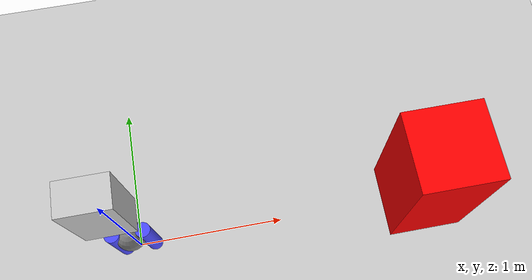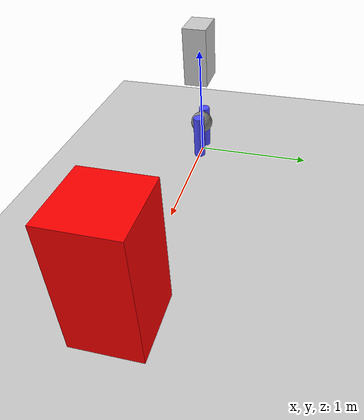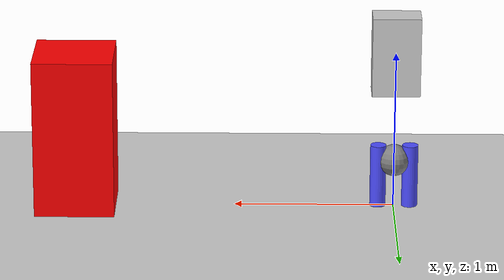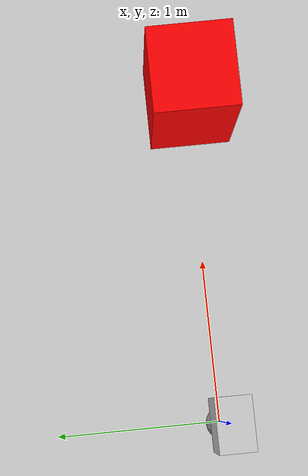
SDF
<?xml version="1.0" ?>
<sdf version="1.7">
  <world name="humanoid_simulation">
    <!-- Include the default ground plane -->
    <include>
      <uri>model://ground_plane</uri>
    </include>

    <!-- Include the default sun -->
    <include>
      <uri>model://sun</uri>
    </include>

    <!-- Physics engine configuration -->
    <physics type="ode">
      <max_step_size>0.001</max_step_size>
      <real_time_factor>1.0</real_time_factor>
      <real_time_update_rate>1000.0</real_time_update_rate>
      <gravity>0 0 -9.8</gravity>
    </physics>

    <!-- Simple humanoid robot model -->
    <model name="simple_humanoid">
      <!-- Main body -->
      <link name="torso">
        <pose>0 0 1.0 0 0 0</pose>
        <collision name="torso_collision">
          <geometry>
            <box>
              <size>0.3 0.2 0.5</size>
            </box>
          </geometry>
        </collision>
        <visual name="torso_visual">
          <geometry>
            <box>
              <size>0.3 0.2 0.5</size>
            </box>
          </geometry>
          <material>
            <ambient>0.8 0.8 0.8 1</ambient>
            <diffuse>0.8 0.8 0.8 1</diffuse>
          </material>
        </visual>
        <inertial>
          <mass>10.0</mass>
          <inertia>
            <ixx>0.5</ixx>
            <ixy>0.0</ixy>
            <ixz>0.0</ixz>
            <iyy>0.6</iyy>
            <iyz>0.0</iyz>
            <izz>0.3</izz>
          </inertia>
        </inertial>
      </link>

      <!-- Head -->
      <link name="head">
        <pose>0 0 0.3 0 0 0</pose>
        <collision name="head_collision">
          <geometry>
            <sphere>
              <radius>0.1</radius>
            </sphere>
          </geometry>
        </collision>
        <visual name="head_visual">
          <geometry>
            <sphere>
              <radius>0.1</radius>
            </sphere>
          </geometry>
          <material>
            <ambient>0.5 0.5 0.5 1</ambient>
            <diffuse>0.5 0.5 0.5 1</diffuse>
          </material>
        </visual>
        <inertial>
          <mass>2.0</mass>
          <inertia>
            <ixx>0.02</ixx>
            <ixy>0.0</ixy>
            <ixz>0.0</ixz>
            <iyy>0.02</iyy>
            <iyz>0.0</iyz>
            <izz>0.02</izz>
          </inertia>
        </inertial>
      </link>

      <!-- Connect torso and head -->
      <joint name="neck_joint" type="revolute">
        <parent>torso</parent>
        <child>head</child>
        <axis>
          <xyz>0 0 1</xyz>
          <limit>
            <lower>-1.57</lower>
            <upper>1.57</upper>
          </limit>
        </axis>
      </joint>

      <!-- Left leg -->
      <link name="left_thigh">
        <pose>-0.1 0 0.2 0 0 0</pose>
        <collision name="left_thigh_collision">
          <geometry>
            <cylinder>
              <radius>0.05</radius>
              <length>0.4</length>
            </cylinder>
          </geometry>
        </collision>
        <visual name="left_thigh_visual">
          <geometry>
            <cylinder>
              <radius>0.05</radius>
              <length>0.4</length>
            </cylinder>
          </geometry>
          <material>
            <ambient>0.3 0.3 1.0 1</ambient>
            <diffuse>0.3 0.3 1.0 1</diffuse>
          </material>
        </visual>
        <inertial>
          <mass>3.0</mass>
          <inertia>
            <ixx>0.05</ixx>
            <ixy>0.0</ixy>
            <ixz>0.0</ixz>
            <iyy>0.05</iyy>
            <iyz>0.0</iyz>
            <izz>0.01</izz>
          </inertia>
        </inertial>
      </link>

      <joint name="left_hip_joint" type="revolute">
        <parent>torso</parent>
        <child>left_thigh</child>
        <axis>
          <xyz>0 1 0</xyz>
          <limit>
            <lower>-1.57</lower>
            <upper>1.57</upper>
          </limit>
        </axis>
      </joint>

      <!-- Right leg -->
      <link name="right_thigh">
        <pose>0.1 0 0.2 0 0 0</pose>
        <collision name="right_thigh_collision">
          <geometry>
            <cylinder>
              <radius>0.05</radius>
              <length>0.4</length>
            </cylinder>
          </geometry>
        </collision>
        <visual name="right_thigh_visual">
          <geometry>
            <cylinder>
              <radius>0.05</radius>
              <length>0.4</length>
            </cylinder>
          </geometry>
          <material>
            <ambient>0.3 0.3 1.0 1</ambient>
            <diffuse>0.3 0.3 1.0 1</diffuse>
          </material>
        </visual>
        <inertial>
          <mass>3.0</mass>
          <inertia>
            <ixx>0.05</ixx>
            <ixy>0.0</ixy>
            <ixz>0.0</ixz>
            <iyy>0.05</iyy>
            <iyz>0.0</iyz>
            <izz>0.01</izz>
          </inertia>
        </inertial>
      </link>

      <joint name="right_hip_joint" type="revolute">
        <parent>torso</parent>
        <child>right_thigh</child>
        <axis>
          <xyz>0 1 0</xyz>
          <limit>
            <lower>-1.57</lower>
            <upper>1.57</upper>
          </limit>
        </axis>
      </joint>

      <!-- Sensors -->
      <gazebo reference="torso">
        <sensor name="camera1" type="camera">
          <pose>0.15 0 0.2 0 0 0</pose>
          <camera name="head_camera">
            <horizontal_fov>1.047</horizontal_fov>
            <image>
              <width>640</width>
              <height>480</height>
              <format>R8G8B8</format>
            </image>
            <clip>
              <near>0.1</near>
              <far>10.0</far>
            </clip>
          </camera>
          <always_on>true</always_on>
          <update_rate>30.0</update_rate>
        </sensor>

        <sensor name="imu_sensor" type="imu">
          <always_on>true</always_on>
          <update_rate>100.0</update_rate>
        </sensor>
      </gazebo>
    </model>

    <!-- Simple obstacles -->
    <model name="box_obstacle">
      <pose>2 0 0.5 0 0 0</pose>
      <link name="box_link">
        <collision name="box_collision">
          <geometry>
            <box>
              <size>0.5 0.5 1.0</size>
            </box>
          </geometry>
        </collision>
        <visual name="box_visual">
          <geometry>
            <box>
              <size>0.5 0.5 1.0</size>
            </box>
          </geometry>
          <material>
            <ambient>1.0 0.0 0.0 1</ambient>
            <diffuse>1.0 0.0 0.0 1</diffuse>
          </material>
        </visual>
        <inertial>
          <mass>5.0</mass>
          <inertia>
            <ixx>0.5</ixx>
            <ixy>0.0</ixy>
            <ixz>0.0</ixz>
            <iyy>0.5</iyy>
            <iyz>0.0</iyz>
            <izz>0.5</izz>
          </inertia>
        </inertial>
      </link>
    </model>
  </world>
</sdf>
